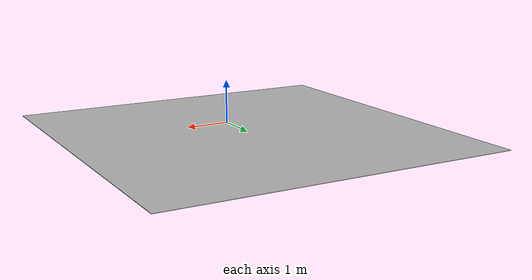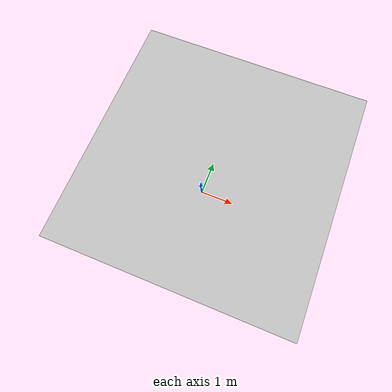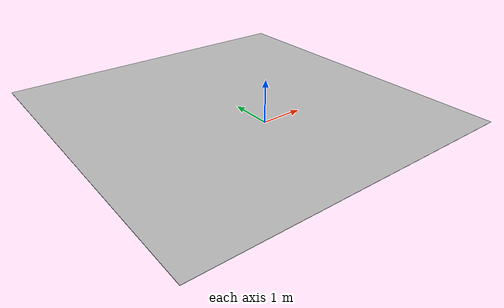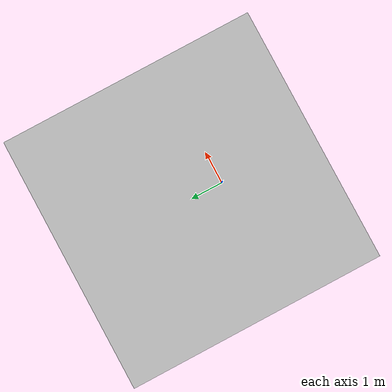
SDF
<?xml version='1.0'?>
<sdf version='1.7'>
  <model name='Desert_Pattern'>

    <include>
      <uri>model://Ground_Base_Model</uri>
    </include>

    <link name='Ground_Pattern'>
      <pose>0 1 0 0 0 0</pose>
      <visual name='Pattern_Visual'>
        <cast_shadows>0</cast_shadows>
        <pose>0 0 0 0 0 0</pose>
        <geometry>
          <box>
            <size>8 8 0.01</size>
          </box>
        </geometry>
        <material>
        <script>
            <uri>model://Desert_Pattern/Ground_Texture/Ground.material</uri>
            <name>Ground_Mat</name>
        </script>
        </material>
      </visual>
    </link>

    <joint name='Surface_Pattern_Joint' type='fixed'>
      <parent>Ground_Base_Model::Ground_Link</parent>
      <child>Ground_Pattern</child>
    </joint>

    <static>0</static>
  <allow_auto_disable>1</allow_auto_disable>
  </model>
</sdf>

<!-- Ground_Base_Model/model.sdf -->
<sdf version='1.7'>
  <model name='Ground_Base_Model'>
    <static>1</static>
    <link name='Ground_Link'>
      <pose>0 0 0 0 3.14 0</pose>
      <inertial>
        <mass>1000</mass>
        <pose>0 0 0 0 0 0</pose>
        <inertia>
          <ixx>500</ixx>
          <ixy>0</ixy>
          <ixz>0</ixz>
          <iyy>500</iyy>
          <iyz>0</iyz>
          <izz>1000</izz>
        </inertia>
      </inertial>
      <self_collide>0</self_collide>
      <enable_wind>0</enable_wind>
      <kinematic>0</kinematic>
      <gravity>0</gravity>

    </link>

    <allow_auto_disable>1</allow_auto_disable>
  </model>
</sdf>
